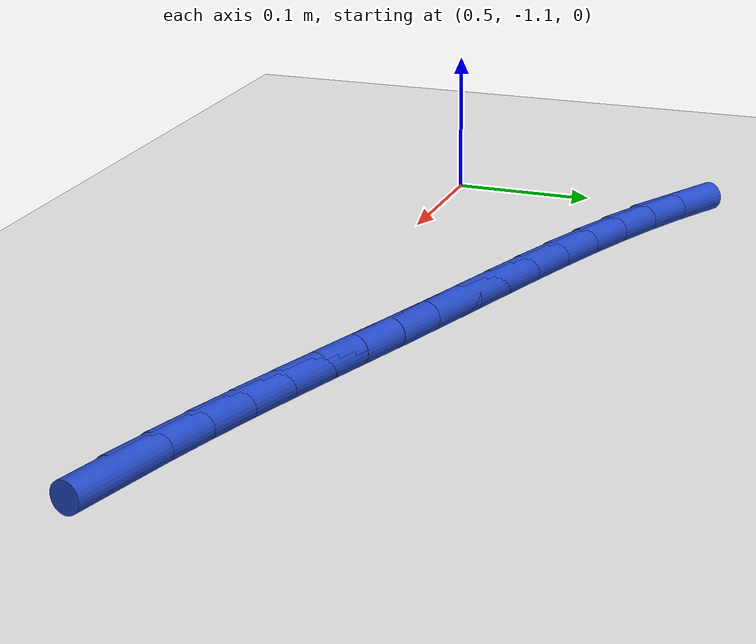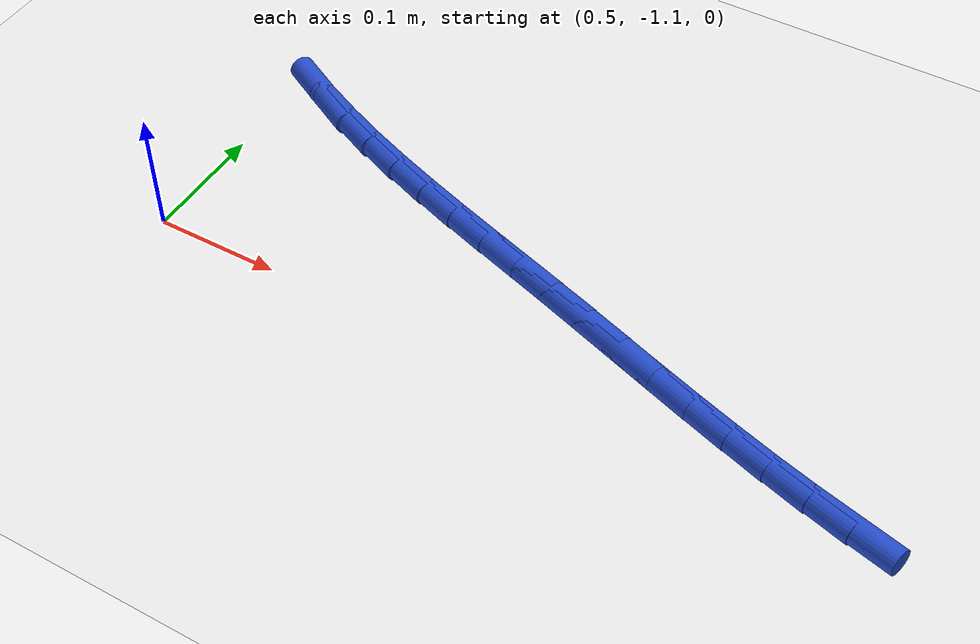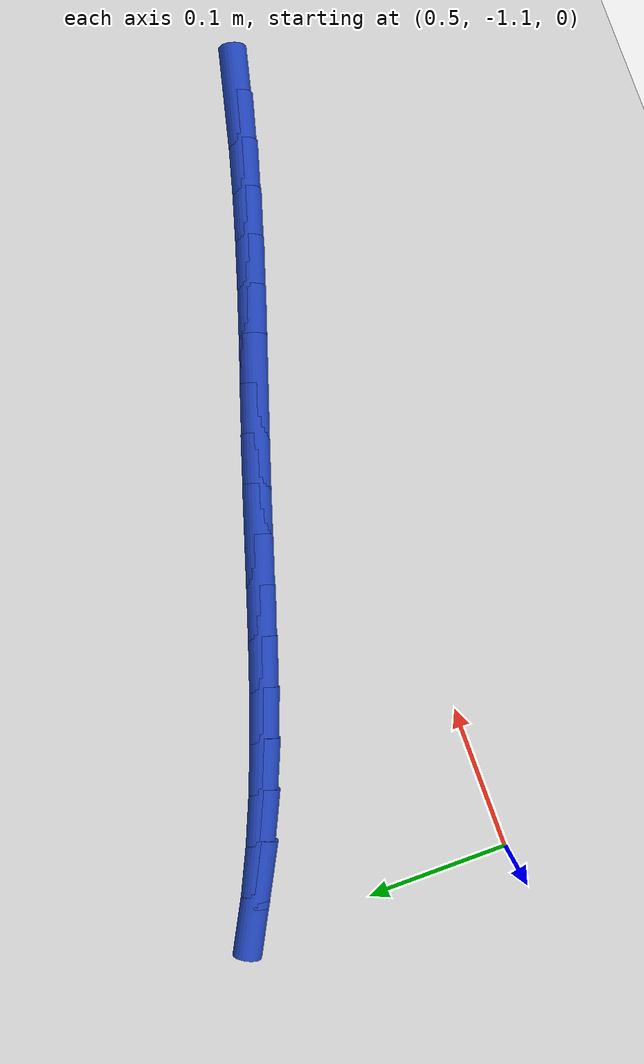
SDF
<sdf version="1.6">
 <world name="default">
  <model name="ground_plane">
   <static>1</static>
   <link name="link">
    <collision name="collision">
     <geometry><plane><normal>0 0 1</normal><size>100 100</size></plane></geometry>
     <surface><friction><ode><mu>100</mu><mu2>50</mu2></ode></friction></surface>
    </collision>
    <visual name="visual">
     <cast_shadows>0</cast_shadows>
     <geometry><plane><normal>0 0 1</normal><size>100 100</size></plane></geometry>
     <material>
      <script><uri>file://media/materials/scripts/gazebo.material</uri><name>Gazebo/WhiteGlow</name></script>
     </material>
    </visual>
   </link>
  </model>
  <model name="line">
   <link name="link_152">
    <pose>1.0575854435813092 -1.1038925433840945 0.01 0 1.57 -0.24116328519747102</pose>
    <collision name="collision">
     <geometry><cylinder><radius>0.01</radius><length>0.08</length></cylinder></geometry>
    </collision>
    <visual name="visual">
     <material>
      <script><name>Gazebo/Blue</name><uri>file://media/materials/scripts/gazebo.material</uri></script>
     </material>
     <geometry><cylinder><radius>0.01</radius><length>0.08</length></cylinder></geometry>
    </visual>
   </link>
   <link name="link_153">
    <pose>1.0240517158198639 -1.0956449228948286 0.01 0 1.57 -0.2671698339717439</pose>
    <collision name="collision">
     <geometry><cylinder><radius>0.01</radius><length>0.08</length></cylinder></geometry>
    </collision>
    <visual name="visual">
     <material>
      <script><name>Gazebo/Blue</name><uri>file://media/materials/scripts/gazebo.material</uri></script>
     </material>
     <geometry><cylinder><radius>0.01</radius><length>0.08</length></cylinder></geometry>
    </visual>
   </link>
   <link name="link_154">
    <pose>0.9906193929358751 -1.0864940424553335 0.01 0 1.57 -0.2879850510641065</pose>
    <collision name="collision">
     <geometry><cylinder><radius>0.01</radius><length>0.08</length></cylinder></geometry>
    </collision>
    <visual name="visual">
     <material>
      <script><name>Gazebo/Blue</name><uri>file://media/materials/scripts/gazebo.material</uri></script>
     </material>
     <geometry><cylinder><radius>0.01</radius><length>0.08</length></cylinder></geometry>
    </visual>
   </link>
   <link name="link_155">
    <pose>0.9572576847750988 -1.0766116465472462 0.01 0 1.57 -0.3036796809538662</pose>
    <collision name="collision">
     <geometry><cylinder><radius>0.01</radius><length>0.08</length></cylinder></geometry>
    </collision>
    <visual name="visual">
     <material>
      <script><name>Gazebo/Blue</name><uri>file://media/materials/scripts/gazebo.material</uri></script>
     </material>
     <geometry><cylinder><radius>0.01</radius><length>0.08</length></cylinder></geometry>
    </visual>
   </link>
   <link name="link_156">
    <pose>0.9239358011832896 -1.0661694796522017 0.01 0 1.57 -0.31432739633073803</pose>
    <collision name="collision">
     <geometry><cylinder><radius>0.01</radius><length>0.08</length></cylinder></geometry>
    </collision>
    <visual name="visual">
     <material>
      <script><name>Gazebo/Blue</name><uri>file://media/materials/scripts/gazebo.material</uri></script>
     </material>
     <geometry><cylinder><radius>0.01</radius><length>0.08</length></cylinder></geometry>
    </visual>
   </link>
   <link name="link_157">
    <pose>0.8906229520062032 -1.0553392862518363 0.01 0 1.57 -0.31999298633285905</pose>
    <collision name="collision">
     <geometry><cylinder><radius>0.01</radius><length>0.08</length></cylinder></geometry>
    </collision>
    <visual name="visual">
     <material>
      <script><name>Gazebo/Blue</name><uri>file://media/materials/scripts/gazebo.material</uri></script>
     </material>
     <geometry><cylinder><radius>0.01</radius><length>0.08</length></cylinder></geometry>
    </visual>
   </link>
   <link name="link_158">
    <pose>0.8572883470895951 -1.0442928108277854 0.01 0 1.57 -0.3207248524344342</pose>
    <collision name="collision">
     <geometry><cylinder><radius>0.01</radius><length>0.08</length></cylinder></geometry>
    </collision>
    <visual name="visual">
     <material>
      <script><name>Gazebo/Blue</name><uri>file://media/materials/scripts/gazebo.material</uri></script>
     </material>
     <geometry><cylinder><radius>0.01</radius><length>0.08</length></cylinder></geometry>
    </visual>
   </link>
   <link name="link_159">
    <pose>0.8239011962792205 -1.0332017978616859 0.01 0 1.57 -0.3165513429491778</pose>
    <collision name="collision">
     <geometry><cylinder><radius>0.01</radius><length>0.08</length></cylinder></geometry>
    </collision>
    <visual name="visual">
     <material>
      <script><name>Gazebo/Blue</name><uri>file://media/materials/scripts/gazebo.material</uri></script>
     </material>
     <geometry><cylinder><radius>0.01</radius><length>0.08</length></cylinder></geometry>
    </visual>
   </link>
   <link name="link_160">
    <pose>0.7904307094208348 -1.0222379918351727 0.01 0 1.57 -0.30900293223235387</pose>
    <collision name="collision">
     <geometry><cylinder><radius>0.01</radius><length>0.08</length></cylinder></geometry>
    </collision>
    <visual name="visual">
     <material>
      <script><name>Gazebo/Blue</name><uri>file://media/materials/scripts/gazebo.material</uri></script>
     </material>
     <geometry><cylinder><radius>0.01</radius><length>0.08</length></cylinder></geometry>
    </visual>
   </link>
   <link name="link_161">
    <pose>0.7568658206056005 -1.0115231234266173 0.01 0 1.57 -0.30596687345097734</pose>
    <collision name="collision">
     <geometry><cylinder><radius>0.01</radius><length>0.08</length></cylinder></geometry>
    </collision>
    <visual name="visual">
     <material>
      <script><name>Gazebo/Blue</name><uri>file://media/materials/scripts/gazebo.material</uri></script>
     </material>
     <geometry><cylinder><radius>0.01</radius><length>0.08</length></cylinder></geometry>
    </visual>
   </link>
   <link name="link_162">
    <pose>0.7232977956529231 -1.0009194457618313 0.01 0 1.57 -0.3100051689278865</pose>
    <collision name="collision">
     <geometry><cylinder><radius>0.01</radius><length>0.08</length></cylinder></geometry>
    </collision>
    <visual name="visual">
     <material>
      <script><name>Gazebo/Blue</name><uri>file://media/materials/scripts/gazebo.material</uri></script>
     </material>
     <geometry><cylinder><radius>0.01</radius><length>0.08</length></cylinder></geometry>
    </visual>
   </link>
   <link name="link_163">
    <pose>0.6898509847173669 -0.9902053216379693 0.01 0 1.57 -0.3211858885783724</pose>
    <collision name="collision">
     <geometry><cylinder><radius>0.01</radius><length>0.08</length></cylinder></geometry>
    </collision>
    <visual name="visual">
     <material>
      <script><name>Gazebo/Blue</name><uri>file://media/materials/scripts/gazebo.material</uri></script>
     </material>
     <geometry><cylinder><radius>0.01</radius><length>0.08</length></cylinder></geometry>
    </visual>
   </link>
   <link name="link_164">
    <pose>0.6566497545866475 -0.9791590716763134 0.01 0 1.57 -0.33963231793583515</pose>
    <collision name="collision">
     <geometry><cylinder><radius>0.01</radius><length>0.08</length></cylinder></geometry>
    </collision>
    <visual name="visual">
     <material>
      <script><name>Gazebo/Blue</name><uri>file://media/materials/scripts/gazebo.material</uri></script>
     </material>
     <geometry><cylinder><radius>0.01</radius><length>0.08</length></cylinder></geometry>
    </visual>
   </link>
   <link name="link_165">
    <pose>0.623818472048482 -0.9675590164981475 0.01 0 1.57 -0.36550911800336994</pose>
    <collision name="collision">
     <geometry><cylinder><radius>0.01</radius><length>0.08</length></cylinder></geometry>
    </collision>
    <visual name="visual">
     <material>
      <script><name>Gazebo/Blue</name><uri>file://media/materials/scripts/gazebo.material</uri></script>
     </material>
     <geometry><cylinder><radius>0.01</radius><length>0.08</length></cylinder></geometry>
    </visual>
   </link>
   <link name="link_166">
    <pose>0.5914815038905862 -0.955183476724754 0.01 0 1.57 -0.3989946293231489</pose>
    <collision name="collision">
     <geometry><cylinder><radius>0.01</radius><length>0.08</length></cylinder></geometry>
    </collision>
    <visual name="visual">
     <material>
      <script><name>Gazebo/Blue</name><uri>file://media/materials/scripts/gazebo.material</uri></script>
     </material>
     <geometry><cylinder><radius>0.01</radius><length>0.08</length></cylinder></geometry>
    </visual>
   </link>
   <link name="link_167">
    <pose>0.559763216900677 -0.9418107729774168 0.01 0 1.57 -0.44023801867633533</pose>
    <collision name="collision">
     <geometry><cylinder><radius>0.01</radius><length>0.08</length></cylinder></geometry>
    </collision>
    <visual name="visual">
     <material>
      <script><name>Gazebo/Blue</name><uri>file://media/materials/scripts/gazebo.material</uri></script>
     </material>
     <geometry><cylinder><radius>0.01</radius><length>0.08</length></cylinder></geometry>
    </visual>
   </link>
   <link name="link_168">
    <pose>0.5287879778664691 -0.9272192258774178 0.01 0 1.57 -0.4892993439140182</pose>
    <collision name="collision">
     <geometry><cylinder><radius>0.01</radius><length>0.08</length></cylinder></geometry>
    </collision>
    <visual name="visual">
     <material>
      <script><name>Gazebo/Blue</name><uri>file://media/materials/scripts/gazebo.material</uri></script>
     </material>
     <geometry><cylinder><radius>0.01</radius><length>0.08</length></cylinder></geometry>
    </visual>
   </link>
  </model>
 </world>
</sdf>
